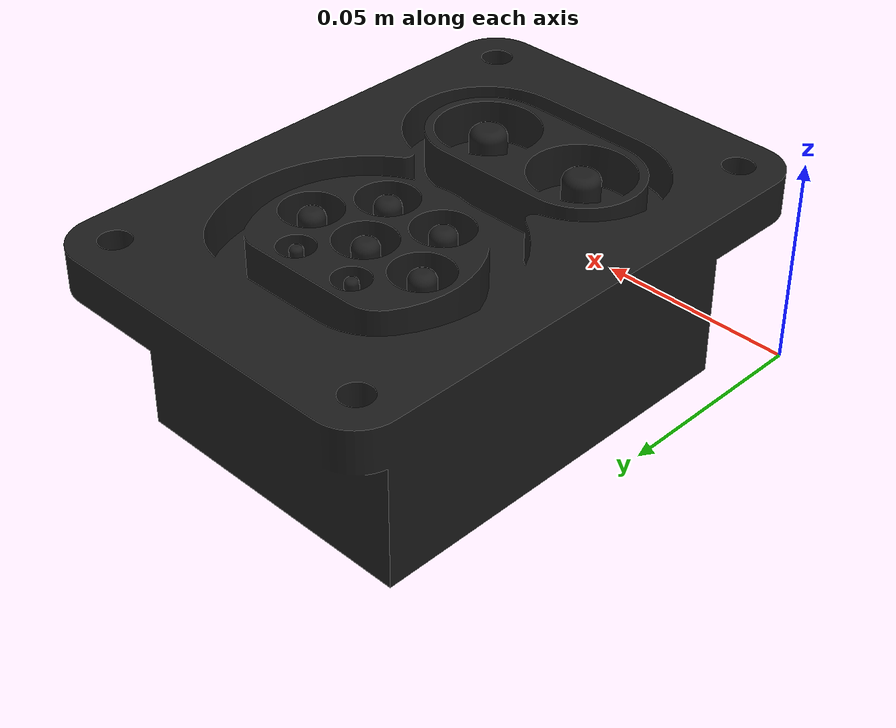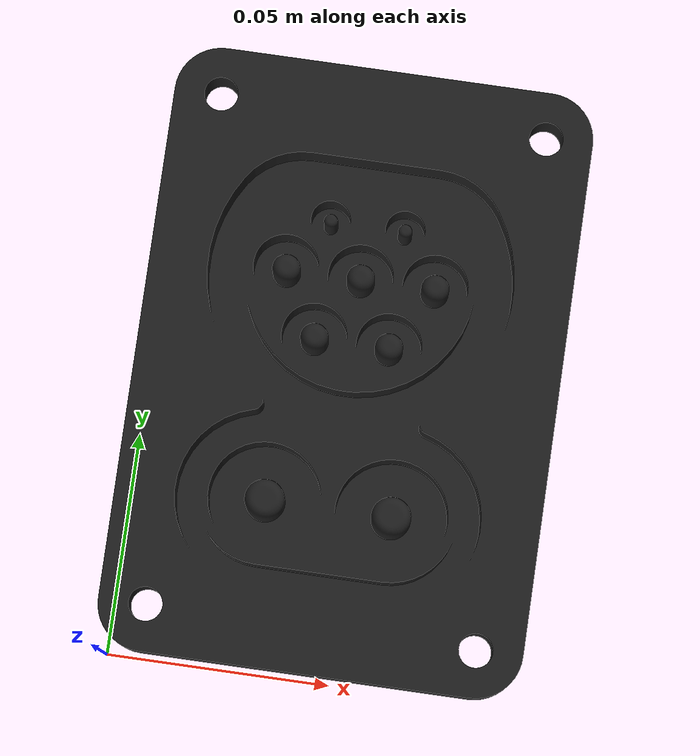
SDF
<?xml version="1.0" ?>
<sdf version="1.9">
<model name="socket">
  <static>true</static>
  <pose>0 0 0 0 0 0</pose>
  <link name="link">
    <visual name="visual">
      <geometry>
        <mesh>
          <uri>model://socket/meshes/socket.dae</uri>
          <scale>1 1 1</scale>
        </mesh>
      </geometry>
    </visual>
    <collision name="collision">
      <geometry>
        <mesh>
          <uri>model://socket/meshes/socket.dae</uri>
          <scale>1 1 1</scale>
        </mesh>
      </geometry>
    </collision>
  </link>
</model>
</sdf>
